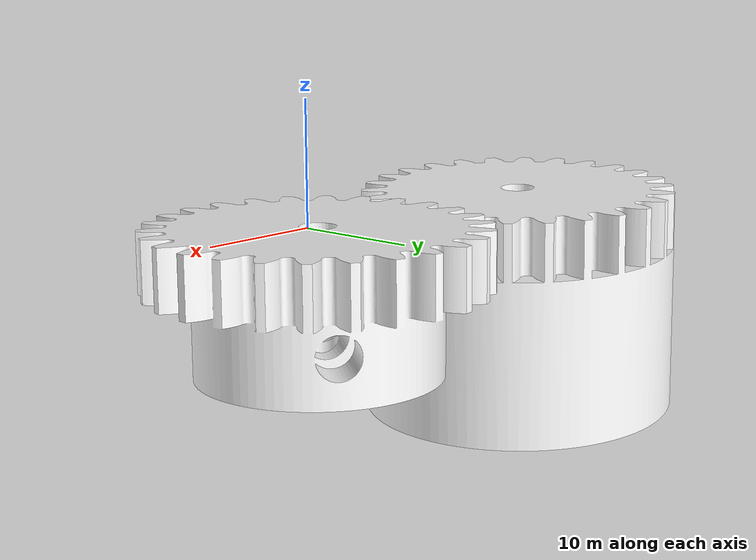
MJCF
<?xml version="1.0"?>
<mujoco model="moving3">
  <default>
    <default class="visual">
      <geom group="2" type="mesh" contype="0" conaffinity="0"/>
    </default>
    <default class="collision">
      <geom group="3" type="mesh"/>
    </default>
  </default>
  <asset>
    <mesh file="FabConvert.com_gear_1.obj"/>
    <mesh file="FabConvert.com_gear_2.obj"/>
  </asset>
  <worldbody>
    <body name="FabConvert.com_gear_1">
      <joint name="gear_joint_1" type="hinge" pos="-1 -1 -1" axis="0 0 1" stiffness="0" range="0 360"/>
      <geom type="mesh" mesh="FabConvert.com_gear_1" class="visual" quat="4.371138828673793e-08 -1.0 -0.0 -0.0" pos="-1.0890698432922363 0.0 0.0" rgba="1.0 1.0 1.0 1.0"/>
      <geom type="mesh" mesh="FabConvert.com_gear_1" class="collision" quat="4.371138828673793e-08 -1.0 -0.0 -0.0" pos="-1.0890698432922363 0.0 0.0"/>
    </body>
    <body name="FabConvert.com_gear_2">
      <joint name="gear_joint_2" type="hinge" pos="-26.642738342285156 -0.08491900563240051 -0.19510163366794586" axis="0 0 1" stiffness="0" range="0 360"/>
      <geom type="mesh" mesh="FabConvert.com_gear_2" class="visual" quat="0.0054664392955601215 0.9835273027420044 0.1791350096464157 -0.023555144667625427" pos="-26.642738342285156 -0.08491900563240051 -0.19510163366794586" rgba="1.0 1.0 1.0 1.0"/>
      <geom type="mesh" mesh="FabConvert.com_gear_2" class="collision" quat="0.0054664392955601215 0.9835273027420044 0.1791350096464157 -0.023555144667625427" pos="-26.642738342285156 -0.08491900563240051 -0.19510163366794586"/>
      <site name="gear2_center" pos="0 0 0"/>

      <!-- Dummy constraint to simulate gear interaction -->

    </body>

  </worldbody>
  <actuator>
    <motor joint="gear_joint_1" ctrlrange="-1 1" gear="1"/>
  </actuator>
</mujoco>
